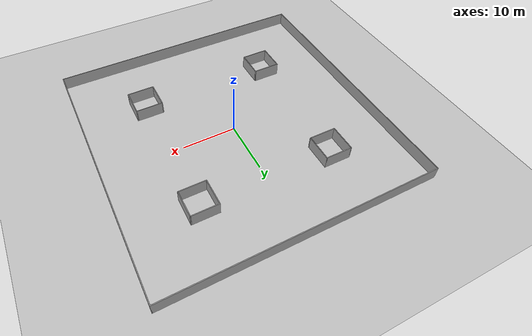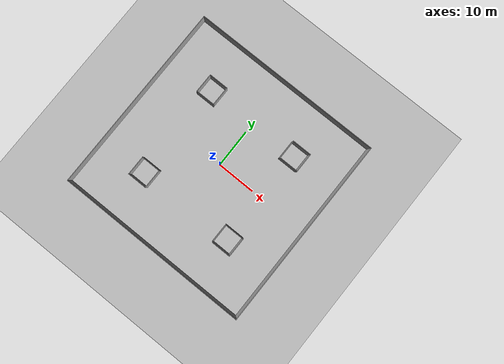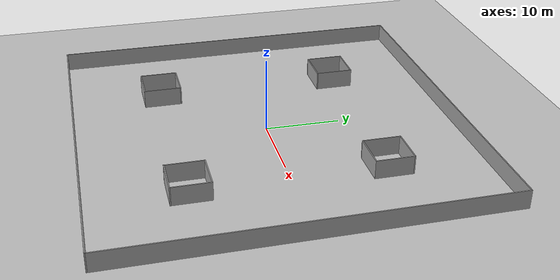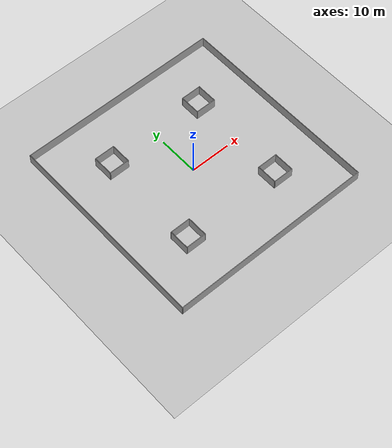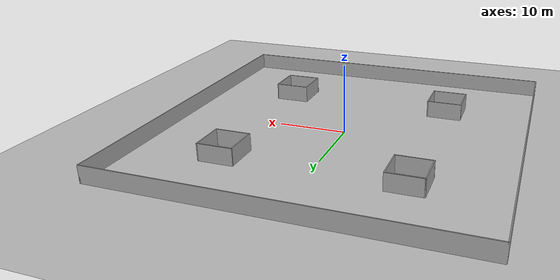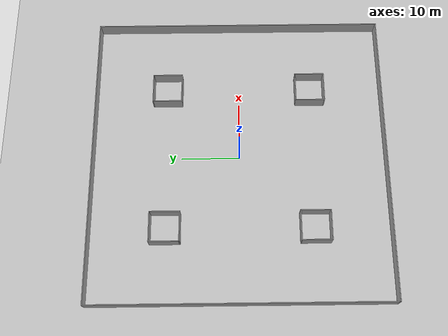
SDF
<sdf version="1.7">
 <world name="default">
  <light name="sun" type="directional">
   <pose>0 0 10 0 -0 0</pose>
   <diffuse>0.8 0.8 0.8 1</diffuse>
   <specular>0.2 0.2 0.2 1</specular>
   <attenuation>
    <range>1000</range>
    <constant>0.9</constant>
    <linear>0.01</linear>
    <quadratic>0.001</quadratic>
   </attenuation>
   <direction>-0.5 0.1 -0.9</direction>
   <spot><inner_angle>0</inner_angle><outer_angle>0</outer_angle><falloff>0</falloff></spot>
  </light>
  <model name="ground_plane">
   <static>1</static>
   <link name="link">
    <collision name="collision">
     <geometry><plane><normal>0 0 1</normal><size>100 100</size></plane></geometry>
     <surface>
      <contact><collide_bitmask>65535</collide_bitmask></contact>
      <friction><ode><mu>100</mu><mu2>50</mu2></ode></friction>
     </surface>
    </collision>
    <visual name="visual">
     <cast_shadows>0</cast_shadows>
     <geometry><plane><normal>0 0 1</normal><size>100 100</size></plane></geometry>
     <material>
      <script><uri>file://media/materials/scripts/gazebo.material</uri><name>Gazebo/Grey</name></script>
     </material>
    </visual>
   </link>
  </model>
  <gravity>0 0 -9.8</gravity>
  <magnetic_field>6e-06 2.3e-05 -4.2e-05</magnetic_field>
  <atmosphere type="adiabatic"/>
  <physics type="ode">
   <max_step_size>0.001</max_step_size>
   <real_time_factor>1</real_time_factor>
   <real_time_update_rate>1000</real_time_update_rate>
  </physics>
  <scene><ambient>0.4 0.4 0.4 1</ambient><background>0.7 0.7 0.7 1</background><shadows>1</shadows></scene>
  <spherical_coordinates>
   <surface_model>EARTH_WGS84</surface_model>
   <latitude_deg>0</latitude_deg>
   <longitude_deg>0</longitude_deg>
   <elevation>0</elevation>
   <heading_deg>0</heading_deg>
  </spherical_coordinates>
  <model name="area1">
   <link name="Wall_0">
    <collision name="Wall_0_Collision">
     <geometry><box><size>50.3 0.15 2.5</size></box></geometry>
     <pose>0 0 1.25 0 -0 0</pose>
    </collision>
    <visual name="Wall_0_Visual">
     <pose>0 0 1.25 0 -0 0</pose>
     <geometry><box><size>50.3 0.15 2.5</size></box></geometry>
     <material>
      <script><uri>file://media/materials/scripts/gazebo.material</uri><name>Gazebo/Grey</name></script>
      <ambient>1 1 1 1</ambient>
     </material>
     <meta><layer>0</layer></meta>
    </visual>
    <pose>0 25.075 0 0 -0 0</pose>
   </link>
   <link name="Wall_1">
    <collision name="Wall_1_Collision">
     <geometry><box><size>50.3 0.15 2.5</size></box></geometry>
     <pose>0 0 1.25 0 -0 0</pose>
    </collision>
    <visual name="Wall_1_Visual">
     <pose>0 0 1.25 0 -0 0</pose>
     <geometry><box><size>50.3 0.15 2.5</size></box></geometry>
     <material>
      <script><uri>file://media/materials/scripts/gazebo.material</uri><name>Gazebo/Grey</name></script>
      <ambient>1 1 1 1</ambient>
     </material>
     <meta><layer>0</layer></meta>
    </visual>
    <pose>25.075 0 0 0 -0 -1.5708</pose>
   </link>
   <link name="Wall_2">
    <collision name="Wall_2_Collision">
     <geometry><box><size>50.3 0.15 2.5</size></box></geometry>
     <pose>0 0 1.25 0 -0 0</pose>
    </collision>
    <visual name="Wall_2_Visual">
     <pose>0 0 1.25 0 -0 0</pose>
     <geometry><box><size>50.3 0.15 2.5</size></box></geometry>
     <material>
      <script><uri>file://media/materials/scripts/gazebo.material</uri><name>Gazebo/Grey</name></script>
      <ambient>1 1 1 1</ambient>
     </material>
     <meta><layer>0</layer></meta>
    </visual>
    <pose>0 -25.075 0 0 -0 3.14159</pose>
   </link>
   <link name="Wall_3">
    <collision name="Wall_3_Collision">
     <geometry><box><size>50.3 0.15 2.5</size></box></geometry>
     <pose>0 0 1.25 0 -0 0</pose>
    </collision>
    <visual name="Wall_3_Visual">
     <pose>0 0 1.25 0 -0 0</pose>
     <geometry><box><size>50.3 0.15 2.5</size></box></geometry>
     <material>
      <script><uri>file://media/materials/scripts/gazebo.material</uri><name>Gazebo/Grey</name></script>
      <ambient>1 1 1 1</ambient>
     </material>
     <meta><layer>0</layer></meta>
    </visual>
    <pose>-25.075 0 0 0 -0 1.5708</pose>
   </link>
   <static>1</static>
  </model>
  <model name="arena2">
   <link name="Wall_10">
    <collision name="Wall_10_Collision">
     <geometry><box><size>5.15 0.15 2.5</size></box></geometry>
     <pose>0 0 1.25 0 -0 0</pose>
    </collision>
    <visual name="Wall_10_Visual">
     <pose>0 0 1.25 0 -0 0</pose>
     <geometry><box><size>5.15 0.15 2.5</size></box></geometry>
     <material>
      <script><uri>file://media/materials/scripts/gazebo.material</uri><name>Gazebo/Grey</name></script>
      <ambient>1 1 1 1</ambient>
     </material>
     <meta><layer>0</layer></meta>
    </visual>
    <pose>-15 12.5 0 0 -0 1.5708</pose>
   </link>
   <link name="Wall_12">
    <collision name="Wall_12_Collision">
     <geometry><box><size>5.15 0.15 2.5</size></box></geometry>
     <pose>0 0 1.25 0 -0 0</pose>
    </collision>
    <visual name="Wall_12_Visual">
     <pose>0 0 1.25 0 -0 0</pose>
     <geometry><box><size>5.15 0.15 2.5</size></box></geometry>
     <material>
      <script><uri>file://media/materials/scripts/gazebo.material</uri><name>Gazebo/Grey</name></script>
      <ambient>1 1 1 1</ambient>
     </material>
     <meta><layer>0</layer></meta>
    </visual>
    <pose>12.5 15 0 0 -0 3.14159</pose>
   </link>
   <link name="Wall_13">
    <collision name="Wall_13_Collision">
     <geometry><box><size>5.15 0.15 2.5</size></box></geometry>
     <pose>0 0 1.25 0 -0 0</pose>
    </collision>
    <visual name="Wall_13_Visual">
     <pose>0 0 1.25 0 -0 0</pose>
     <geometry><box><size>5.15 0.15 2.5</size></box></geometry>
     <material>
      <script><uri>file://media/materials/scripts/gazebo.material</uri><name>Gazebo/Grey</name></script>
      <ambient>1 1 1 1</ambient>
     </material>
     <meta><layer>0</layer></meta>
    </visual>
    <pose>10 12.5 0 0 -0 -1.5708</pose>
   </link>
   <link name="Wall_14">
    <collision name="Wall_14_Collision">
     <geometry><box><size>5.15 0.15 2.5</size></box></geometry>
     <pose>0 0 1.25 0 -0 0</pose>
    </collision>
    <visual name="Wall_14_Visual">
     <pose>0 0 1.25 0 -0 0</pose>
     <geometry><box><size>5.15 0.15 2.5</size></box></geometry>
     <material>
      <script><uri>file://media/materials/scripts/gazebo.material</uri><name>Gazebo/Grey</name></script>
      <ambient>1 1 1 1</ambient>
     </material>
     <meta><layer>0</layer></meta>
    </visual>
    <pose>12.5 10 0 0 -0 0</pose>
   </link>
   <link name="Wall_15">
    <collision name="Wall_15_Collision">
     <geometry><box><size>5.15 0.15 2.5</size></box></geometry>
     <pose>0 0 1.25 0 -0 0</pose>
    </collision>
    <visual name="Wall_15_Visual">
     <pose>0 0 1.25 0 -0 0</pose>
     <geometry><box><size>5.15 0.15 2.5</size></box></geometry>
     <material>
      <script><uri>file://media/materials/scripts/gazebo.material</uri><name>Gazebo/Grey</name></script>
      <ambient>1 1 1 1</ambient>
     </material>
     <meta><layer>0</layer></meta>
    </visual>
    <pose>15 12.5 0 0 -0 1.5708</pose>
   </link>
   <link name="Wall_17">
    <collision name="Wall_17_Collision">
     <geometry><box><size>5.15 0.15 2.5</size></box></geometry>
     <pose>0 0 1.25 0 -0 0</pose>
    </collision>
    <visual name="Wall_17_Visual">
     <pose>0 0 1.25 0 -0 0</pose>
     <geometry><box><size>5.15 0.15 2.5</size></box></geometry>
     <material>
      <script><uri>file://media/materials/scripts/gazebo.material</uri><name>Gazebo/Grey</name></script>
      <ambient>1 1 1 1</ambient>
     </material>
     <meta><layer>0</layer></meta>
    </visual>
    <pose>-12.5 -15 0 0 -0 0</pose>
   </link>
   <link name="Wall_18">
    <collision name="Wall_18_Collision">
     <geometry><box><size>5.15 0.15 2.5</size></box></geometry>
     <pose>0 0 1.25 0 -0 0</pose>
    </collision>
    <visual name="Wall_18_Visual">
     <pose>0 0 1.25 0 -0 0</pose>
     <geometry><box><size>5.15 0.15 2.5</size></box></geometry>
     <material>
      <script><uri>file://media/materials/scripts/gazebo.material</uri><name>Gazebo/Grey</name></script>
      <ambient>1 1 1 1</ambient>
     </material>
     <meta><layer>0</layer></meta>
    </visual>
    <pose>-10 -12.5 0 0 -0 1.5708</pose>
   </link>
   <link name="Wall_19">
    <collision name="Wall_19_Collision">
     <geometry><box><size>5.15 0.15 2.5</size></box></geometry>
     <pose>0 0 1.25 0 -0 0</pose>
    </collision>
    <visual name="Wall_19_Visual">
     <pose>0 0 1.25 0 -0 0</pose>
     <geometry><box><size>5.15 0.15 2.5</size></box></geometry>
     <material>
      <script><uri>file://media/materials/scripts/gazebo.material</uri><name>Gazebo/Grey</name></script>
      <ambient>1 1 1 1</ambient>
     </material>
     <meta><layer>0</layer></meta>
    </visual>
    <pose>-12.5 -10 0 0 -0 3.14159</pose>
   </link>
   <link name="Wall_20">
    <collision name="Wall_20_Collision">
     <geometry><box><size>5.15 0.15 2.5</size></box></geometry>
     <pose>0 0 1.25 0 -0 0</pose>
    </collision>
    <visual name="Wall_20_Visual">
     <pose>0 0 1.25 0 -0 0</pose>
     <geometry><box><size>5.15 0.15 2.5</size></box></geometry>
     <material>
      <script><uri>file://media/materials/scripts/gazebo.material</uri><name>Gazebo/Grey</name></script>
      <ambient>1 1 1 1</ambient>
     </material>
     <meta><layer>0</layer></meta>
    </visual>
    <pose>-15 -12.5 0 0 -0 -1.5708</pose>
   </link>
   <link name="Wall_22">
    <collision name="Wall_22_Collision">
     <geometry><box><size>5.15 0.15 2.5</size></box></geometry>
     <pose>0 0 1.25 0 -0 0</pose>
    </collision>
    <visual name="Wall_22_Visual">
     <pose>0 0 1.25 0 -0 0</pose>
     <geometry><box><size>5.15 0.15 2.5</size></box></geometry>
     <material>
      <script><uri>file://media/materials/scripts/gazebo.material</uri><name>Gazebo/Grey</name></script>
      <ambient>1 1 1 1</ambient>
     </material>
     <meta><layer>0</layer></meta>
    </visual>
    <pose>12.5 -10 0 0 -0 0</pose>
   </link>
   <link name="Wall_23">
    <collision name="Wall_23_Collision">
     <geometry><box><size>5.15 0.15 2.5</size></box></geometry>
     <pose>0 0 1.25 0 -0 0</pose>
    </collision>
    <visual name="Wall_23_Visual">
     <pose>0 0 1.25 0 -0 0</pose>
     <geometry><box><size>5.15 0.15 2.5</size></box></geometry>
     <material>
      <script><uri>file://media/materials/scripts/gazebo.material</uri><name>Gazebo/Grey</name></script>
      <ambient>1 1 1 1</ambient>
     </material>
     <meta><layer>0</layer></meta>
    </visual>
    <pose>15 -12.5 0 0 -0 -1.5708</pose>
   </link>
   <link name="Wall_24">
    <collision name="Wall_24_Collision">
     <geometry><box><size>5.15 0.15 2.5</size></box></geometry>
     <pose>0 0 1.25 0 -0 0</pose>
    </collision>
    <visual name="Wall_24_Visual">
     <pose>0 0 1.25 0 -0 0</pose>
     <geometry><box><size>5.15 0.15 2.5</size></box></geometry>
     <material>
      <script><uri>file://media/materials/scripts/gazebo.material</uri><name>Gazebo/Grey</name></script>
      <ambient>1 1 1 1</ambient>
     </material>
     <meta><layer>0</layer></meta>
    </visual>
    <pose>12.5 -15 0 0 -0 3.14159</pose>
   </link>
   <link name="Wall_25">
    <collision name="Wall_25_Collision">
     <geometry><box><size>5.15 0.15 2.5</size></box></geometry>
     <pose>0 0 1.25 0 -0 0</pose>
    </collision>
    <visual name="Wall_25_Visual">
     <pose>0 0 1.25 0 -0 0</pose>
     <geometry><box><size>5.15 0.15 2.5</size></box></geometry>
     <material>
      <script><uri>file://media/materials/scripts/gazebo.material</uri><name>Gazebo/Grey</name></script>
      <ambient>1 1 1 1</ambient>
     </material>
     <meta><layer>0</layer></meta>
    </visual>
    <pose>10 -12.5 0 0 -0 1.5708</pose>
   </link>
   <link name="Wall_7">
    <collision name="Wall_7_Collision">
     <geometry><box><size>5.15 0.15 2.5</size></box></geometry>
     <pose>0 0 1.25 0 -0 0</pose>
    </collision>
    <visual name="Wall_7_Visual">
     <pose>0 0 1.25 0 -0 0</pose>
     <geometry><box><size>5.15 0.15 2.5</size></box></geometry>
     <material>
      <script><uri>file://media/materials/scripts/gazebo.material</uri><name>Gazebo/Grey</name></script>
      <ambient>1 1 1 1</ambient>
     </material>
     <meta><layer>0</layer></meta>
    </visual>
    <pose>-12.5 15 0 0 -0 0</pose>
   </link>
   <link name="Wall_8">
    <collision name="Wall_8_Collision">
     <geometry><box><size>5.15 0.15 2.5</size></box></geometry>
     <pose>0 0 1.25 0 -0 0</pose>
    </collision>
    <visual name="Wall_8_Visual">
     <pose>0 0 1.25 0 -0 0</pose>
     <geometry><box><size>5.15 0.15 2.5</size></box></geometry>
     <material>
      <script><uri>file://media/materials/scripts/gazebo.material</uri><name>Gazebo/Grey</name></script>
      <ambient>1 1 1 1</ambient>
     </material>
     <meta><layer>0</layer></meta>
    </visual>
    <pose>-10 12.5 0 0 -0 -1.5708</pose>
   </link>
   <link name="Wall_9">
    <collision name="Wall_9_Collision">
     <geometry><box><size>5.15 0.15 2.5</size></box></geometry>
     <pose>0 0 1.25 0 -0 0</pose>
    </collision>
    <visual name="Wall_9_Visual">
     <pose>0 0 1.25 0 -0 0</pose>
     <geometry><box><size>5.15 0.15 2.5</size></box></geometry>
     <material>
      <script><uri>file://media/materials/scripts/gazebo.material</uri><name>Gazebo/Grey</name></script>
      <ambient>1 1 1 1</ambient>
     </material>
     <meta><layer>0</layer></meta>
    </visual>
    <pose>-12.5 10 0 0 -0 3.14159</pose>
   </link>
   <static>1</static>
  </model>
 </world>
</sdf>
